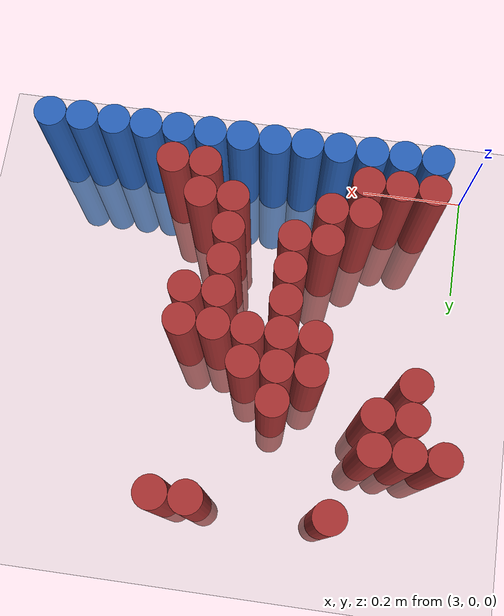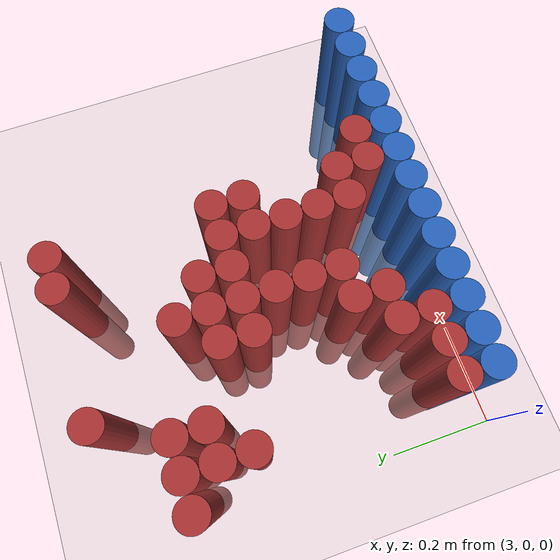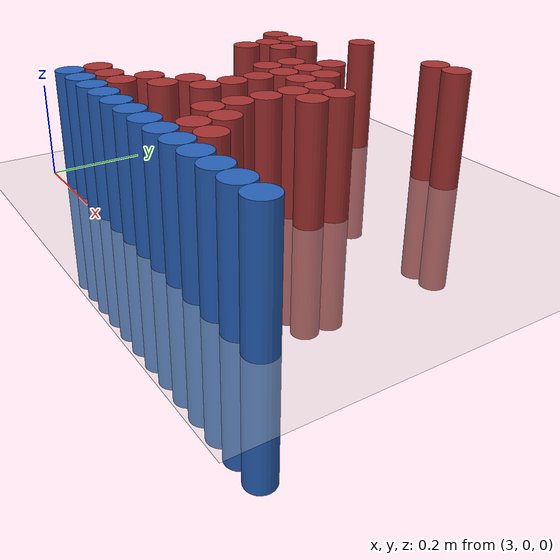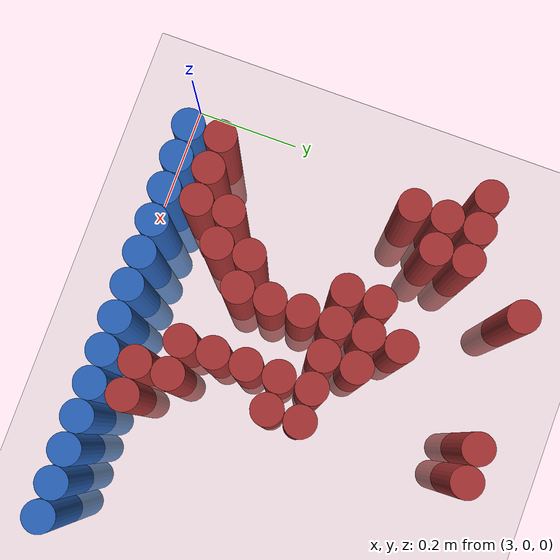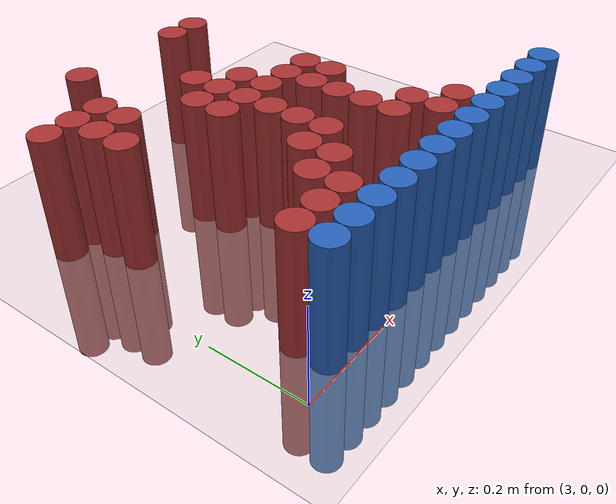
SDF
<sdf version="1.6">
 <world name="default">
  <model name="ground_plane">
   <static>1</static>
   <link name="link">
    <collision name="collision">
     <geometry><plane><normal>0 0 1</normal><size>100 100</size></plane></geometry>
     <surface><friction><ode><mu>100</mu><mu2>50</mu2></ode></friction></surface>
    </collision>
    <visual name="visual">
     <cast_shadows>0</cast_shadows>
     <geometry><plane><normal>0 0 1</normal><size>100 100</size></plane></geometry>
     <material>
      <script><uri>file://media/materials/scripts/gazebo.material</uri><name>Gazebo/Grey</name></script>
     </material>
    </visual>
   </link>
  </model>
  <model name="unit_cylinder_227">
   <static>1</static>
   <pose>3.210000 0.690000 0.000000 0.000000 0.000000 0.000000</pose>
   <link name="link">
    <inertial>
     <mass>1</mass>
     <inertia><ixx>0.145833</ixx><ixy>0</ixy><ixz>0</ixz><iyy>0.145833</iyy><iyz>0</iyz><izz>0.125</izz></inertia>
    </inertial>
    <collision name="collision">
     <geometry><cylinder><radius>0.030000</radius><length>0.5</length></cylinder></geometry>
    </collision>
    <visual name="visual">
     <geometry><cylinder><radius>0.030000</radius><length>0.5</length></cylinder></geometry>
     <material>
      <ambient>0.648000 0.192000 0.192000 1</ambient>
      <diffuse>0.648000 0.192000 0.192000 1</diffuse>
     </material>
     <material>
      <script><name>Gazebo/Grey</name><uri>file://media/materials/scripts/gazebo.material</uri></script>
     </material>
    </visual>
   </link>
  </model>
  <model name="unit_cylinder_228">
   <static>1</static>
   <pose>3.450000 0.690000 0.000000 0.000000 0.000000 0.000000</pose>
   <link name="link">
    <inertial>
     <mass>1</mass>
     <inertia><ixx>0.145833</ixx><ixy>0</ixy><ixz>0</ixz><iyy>0.145833</iyy><iyz>0</iyz><izz>0.125</izz></inertia>
    </inertial>
    <collision name="collision">
     <geometry><cylinder><radius>0.030000</radius><length>0.5</length></cylinder></geometry>
    </collision>
    <visual name="visual">
     <geometry><cylinder><radius>0.030000</radius><length>0.5</length></cylinder></geometry>
     <material>
      <ambient>0.648000 0.192000 0.192000 1</ambient>
      <diffuse>0.648000 0.192000 0.192000 1</diffuse>
     </material>
     <material>
      <script><name>Gazebo/Grey</name><uri>file://media/materials/scripts/gazebo.material</uri></script>
     </material>
    </visual>
   </link>
  </model>
  <model name="unit_cylinder_229">
   <static>1</static>
   <pose>3.510000 0.690000 0.000000 0.000000 0.000000 0.000000</pose>
   <link name="link">
    <inertial>
     <mass>1</mass>
     <inertia><ixx>0.145833</ixx><ixy>0</ixy><ixz>0</ixz><iyy>0.145833</iyy><iyz>0</iyz><izz>0.125</izz></inertia>
    </inertial>
    <collision name="collision">
     <geometry><cylinder><radius>0.030000</radius><length>0.5</length></cylinder></geometry>
    </collision>
    <visual name="visual">
     <geometry><cylinder><radius>0.030000</radius><length>0.5</length></cylinder></geometry>
     <material>
      <ambient>0.648000 0.192000 0.192000 1</ambient>
      <diffuse>0.648000 0.192000 0.192000 1</diffuse>
     </material>
     <material>
      <script><name>Gazebo/Grey</name><uri>file://media/materials/scripts/gazebo.material</uri></script>
     </material>
    </visual>
   </link>
  </model>
  <model name="unit_cylinder_237">
   <static>1</static>
   <pose>3.030000 0.570000 0.000000 0.000000 0.000000 0.000000</pose>
   <link name="link">
    <inertial>
     <mass>1</mass>
     <inertia><ixx>0.145833</ixx><ixy>0</ixy><ixz>0</ixz><iyy>0.145833</iyy><iyz>0</iyz><izz>0.125</izz></inertia>
    </inertial>
    <collision name="collision">
     <geometry><cylinder><radius>0.030000</radius><length>0.5</length></cylinder></geometry>
    </collision>
    <visual name="visual">
     <geometry><cylinder><radius>0.030000</radius><length>0.5</length></cylinder></geometry>
     <material>
      <ambient>0.648000 0.192000 0.192000 1</ambient>
      <diffuse>0.648000 0.192000 0.192000 1</diffuse>
     </material>
     <material>
      <script><name>Gazebo/Grey</name><uri>file://media/materials/scripts/gazebo.material</uri></script>
     </material>
    </visual>
   </link>
  </model>
  <model name="unit_cylinder_238">
   <static>1</static>
   <pose>3.090000 0.570000 0.000000 0.000000 0.000000 0.000000</pose>
   <link name="link">
    <inertial>
     <mass>1</mass>
     <inertia><ixx>0.145833</ixx><ixy>0</ixy><ixz>0</ixz><iyy>0.145833</iyy><iyz>0</iyz><izz>0.125</izz></inertia>
    </inertial>
    <collision name="collision">
     <geometry><cylinder><radius>0.030000</radius><length>0.5</length></cylinder></geometry>
    </collision>
    <visual name="visual">
     <geometry><cylinder><radius>0.030000</radius><length>0.5</length></cylinder></geometry>
     <material>
      <ambient>0.648000 0.192000 0.192000 1</ambient>
      <diffuse>0.648000 0.192000 0.192000 1</diffuse>
     </material>
     <material>
      <script><name>Gazebo/Grey</name><uri>file://media/materials/scripts/gazebo.material</uri></script>
     </material>
    </visual>
   </link>
  </model>
  <model name="unit_cylinder_239">
   <static>1</static>
   <pose>3.150000 0.570000 0.000000 0.000000 0.000000 0.000000</pose>
   <link name="link">
    <inertial>
     <mass>1</mass>
     <inertia><ixx>0.145833</ixx><ixy>0</ixy><ixz>0</ixz><iyy>0.145833</iyy><iyz>0</iyz><izz>0.125</izz></inertia>
    </inertial>
    <collision name="collision">
     <geometry><cylinder><radius>0.030000</radius><length>0.5</length></cylinder></geometry>
    </collision>
    <visual name="visual">
     <geometry><cylinder><radius>0.030000</radius><length>0.5</length></cylinder></geometry>
     <material>
      <ambient>0.648000 0.192000 0.192000 1</ambient>
      <diffuse>0.648000 0.192000 0.192000 1</diffuse>
     </material>
     <material>
      <script><name>Gazebo/Grey</name><uri>file://media/materials/scripts/gazebo.material</uri></script>
     </material>
    </visual>
   </link>
  </model>
  <model name="unit_cylinder_243">
   <static>1</static>
   <pose>3.090000 0.510000 0.000000 0.000000 0.000000 0.000000</pose>
   <link name="link">
    <inertial>
     <mass>1</mass>
     <inertia><ixx>0.145833</ixx><ixy>0</ixy><ixz>0</ixz><iyy>0.145833</iyy><iyz>0</iyz><izz>0.125</izz></inertia>
    </inertial>
    <collision name="collision">
     <geometry><cylinder><radius>0.030000</radius><length>0.5</length></cylinder></geometry>
    </collision>
    <visual name="visual">
     <geometry><cylinder><radius>0.030000</radius><length>0.5</length></cylinder></geometry>
     <material>
      <ambient>0.648000 0.192000 0.192000 1</ambient>
      <diffuse>0.648000 0.192000 0.192000 1</diffuse>
     </material>
     <material>
      <script><name>Gazebo/Grey</name><uri>file://media/materials/scripts/gazebo.material</uri></script>
     </material>
    </visual>
   </link>
  </model>
  <model name="unit_cylinder_244">
   <static>1</static>
   <pose>3.150000 0.510000 0.000000 0.000000 0.000000 0.000000</pose>
   <link name="link">
    <inertial>
     <mass>1</mass>
     <inertia><ixx>0.145833</ixx><ixy>0</ixy><ixz>0</ixz><iyy>0.145833</iyy><iyz>0</iyz><izz>0.125</izz></inertia>
    </inertial>
    <collision name="collision">
     <geometry><cylinder><radius>0.030000</radius><length>0.5</length></cylinder></geometry>
    </collision>
    <visual name="visual">
     <geometry><cylinder><radius>0.030000</radius><length>0.5</length></cylinder></geometry>
     <material>
      <ambient>0.648000 0.192000 0.192000 1</ambient>
      <diffuse>0.648000 0.192000 0.192000 1</diffuse>
     </material>
     <material>
      <script><name>Gazebo/Grey</name><uri>file://media/materials/scripts/gazebo.material</uri></script>
     </material>
    </visual>
   </link>
  </model>
  <model name="unit_cylinder_245">
   <static>1</static>
   <pose>3.330000 0.510000 0.000000 0.000000 0.000000 0.000000</pose>
   <link name="link">
    <inertial>
     <mass>1</mass>
     <inertia><ixx>0.145833</ixx><ixy>0</ixy><ixz>0</ixz><iyy>0.145833</iyy><iyz>0</iyz><izz>0.125</izz></inertia>
    </inertial>
    <collision name="collision">
     <geometry><cylinder><radius>0.030000</radius><length>0.5</length></cylinder></geometry>
    </collision>
    <visual name="visual">
     <geometry><cylinder><radius>0.030000</radius><length>0.5</length></cylinder></geometry>
     <material>
      <ambient>0.648000 0.192000 0.192000 1</ambient>
      <diffuse>0.648000 0.192000 0.192000 1</diffuse>
     </material>
     <material>
      <script><name>Gazebo/Grey</name><uri>file://media/materials/scripts/gazebo.material</uri></script>
     </material>
    </visual>
   </link>
  </model>
  <model name="unit_cylinder_253">
   <static>1</static>
   <pose>3.090000 0.450000 0.000000 0.000000 0.000000 0.000000</pose>
   <link name="link">
    <inertial>
     <mass>1</mass>
     <inertia><ixx>0.145833</ixx><ixy>0</ixy><ixz>0</ixz><iyy>0.145833</iyy><iyz>0</iyz><izz>0.125</izz></inertia>
    </inertial>
    <collision name="collision">
     <geometry><cylinder><radius>0.030000</radius><length>0.5</length></cylinder></geometry>
    </collision>
    <visual name="visual">
     <geometry><cylinder><radius>0.030000</radius><length>0.5</length></cylinder></geometry>
     <material>
      <ambient>0.648000 0.192000 0.192000 1</ambient>
      <diffuse>0.648000 0.192000 0.192000 1</diffuse>
     </material>
     <material>
      <script><name>Gazebo/Grey</name><uri>file://media/materials/scripts/gazebo.material</uri></script>
     </material>
    </visual>
   </link>
  </model>
  <model name="unit_cylinder_254">
   <static>1</static>
   <pose>3.270000 0.450000 0.000000 0.000000 0.000000 0.000000</pose>
   <link name="link">
    <inertial>
     <mass>1</mass>
     <inertia><ixx>0.145833</ixx><ixy>0</ixy><ixz>0</ixz><iyy>0.145833</iyy><iyz>0</iyz><izz>0.125</izz></inertia>
    </inertial>
    <collision name="collision">
     <geometry><cylinder><radius>0.030000</radius><length>0.5</length></cylinder></geometry>
    </collision>
    <visual name="visual">
     <geometry><cylinder><radius>0.030000</radius><length>0.5</length></cylinder></geometry>
     <material>
      <ambient>0.648000 0.192000 0.192000 1</ambient>
      <diffuse>0.648000 0.192000 0.192000 1</diffuse>
     </material>
     <material>
      <script><name>Gazebo/Grey</name><uri>file://media/materials/scripts/gazebo.material</uri></script>
     </material>
    </visual>
   </link>
  </model>
  <model name="unit_cylinder_255">
   <static>1</static>
   <pose>3.330000 0.450000 0.000000 0.000000 0.000000 0.000000</pose>
   <link name="link">
    <inertial>
     <mass>1</mass>
     <inertia><ixx>0.145833</ixx><ixy>0</ixy><ixz>0</ixz><iyy>0.145833</iyy><iyz>0</iyz><izz>0.125</izz></inertia>
    </inertial>
    <collision name="collision">
     <geometry><cylinder><radius>0.030000</radius><length>0.5</length></cylinder></geometry>
    </collision>
    <visual name="visual">
     <geometry><cylinder><radius>0.030000</radius><length>0.5</length></cylinder></geometry>
     <material>
      <ambient>0.648000 0.192000 0.192000 1</ambient>
      <diffuse>0.648000 0.192000 0.192000 1</diffuse>
     </material>
     <material>
      <script><name>Gazebo/Grey</name><uri>file://media/materials/scripts/gazebo.material</uri></script>
     </material>
    </visual>
   </link>
  </model>
  <model name="unit_cylinder_256">
   <static>1</static>
   <pose>3.390000 0.450000 0.000000 0.000000 0.000000 0.000000</pose>
   <link name="link">
    <inertial>
     <mass>1</mass>
     <inertia><ixx>0.145833</ixx><ixy>0</ixy><ixz>0</ixz><iyy>0.145833</iyy><iyz>0</iyz><izz>0.125</izz></inertia>
    </inertial>
    <collision name="collision">
     <geometry><cylinder><radius>0.030000</radius><length>0.5</length></cylinder></geometry>
    </collision>
    <visual name="visual">
     <geometry><cylinder><radius>0.030000</radius><length>0.5</length></cylinder></geometry>
     <material>
      <ambient>0.648000 0.192000 0.192000 1</ambient>
      <diffuse>0.648000 0.192000 0.192000 1</diffuse>
     </material>
     <material>
      <script><name>Gazebo/Grey</name><uri>file://media/materials/scripts/gazebo.material</uri></script>
     </material>
    </visual>
   </link>
  </model>
  <model name="unit_cylinder_264">
   <static>1</static>
   <pose>3.270000 0.390000 0.000000 0.000000 0.000000 0.000000</pose>
   <link name="link">
    <inertial>
     <mass>1</mass>
     <inertia><ixx>0.145833</ixx><ixy>0</ixy><ixz>0</ixz><iyy>0.145833</iyy><iyz>0</iyz><izz>0.125</izz></inertia>
    </inertial>
    <collision name="collision">
     <geometry><cylinder><radius>0.030000</radius><length>0.5</length></cylinder></geometry>
    </collision>
    <visual name="visual">
     <geometry><cylinder><radius>0.030000</radius><length>0.5</length></cylinder></geometry>
     <material>
      <ambient>0.648000 0.192000 0.192000 1</ambient>
      <diffuse>0.648000 0.192000 0.192000 1</diffuse>
     </material>
     <material>
      <script><name>Gazebo/Grey</name><uri>file://media/materials/scripts/gazebo.material</uri></script>
     </material>
    </visual>
   </link>
  </model>
  <model name="unit_cylinder_265">
   <static>1</static>
   <pose>3.330000 0.390000 0.000000 0.000000 0.000000 0.000000</pose>
   <link name="link">
    <inertial>
     <mass>1</mass>
     <inertia><ixx>0.145833</ixx><ixy>0</ixy><ixz>0</ixz><iyy>0.145833</iyy><iyz>0</iyz><izz>0.125</izz></inertia>
    </inertial>
    <collision name="collision">
     <geometry><cylinder><radius>0.030000</radius><length>0.5</length></cylinder></geometry>
    </collision>
    <visual name="visual">
     <geometry><cylinder><radius>0.030000</radius><length>0.5</length></cylinder></geometry>
     <material>
      <ambient>0.648000 0.192000 0.192000 1</ambient>
      <diffuse>0.648000 0.192000 0.192000 1</diffuse>
     </material>
     <material>
      <script><name>Gazebo/Grey</name><uri>file://media/materials/scripts/gazebo.material</uri></script>
     </material>
    </visual>
   </link>
  </model>
  <model name="unit_cylinder_266">
   <static>1</static>
   <pose>3.390000 0.390000 0.000000 0.000000 0.000000 0.000000</pose>
   <link name="link">
    <inertial>
     <mass>1</mass>
     <inertia><ixx>0.145833</ixx><ixy>0</ixy><ixz>0</ixz><iyy>0.145833</iyy><iyz>0</iyz><izz>0.125</izz></inertia>
    </inertial>
    <collision name="collision">
     <geometry><cylinder><radius>0.030000</radius><length>0.5</length></cylinder></geometry>
    </collision>
    <visual name="visual">
     <geometry><cylinder><radius>0.030000</radius><length>0.5</length></cylinder></geometry>
     <material>
      <ambient>0.648000 0.192000 0.192000 1</ambient>
      <diffuse>0.648000 0.192000 0.192000 1</diffuse>
     </material>
     <material>
      <script><name>Gazebo/Grey</name><uri>file://media/materials/scripts/gazebo.material</uri></script>
     </material>
    </visual>
   </link>
  </model>
  <model name="unit_cylinder_267">
   <static>1</static>
   <pose>3.450000 0.390000 0.000000 0.000000 0.000000 0.000000</pose>
   <link name="link">
    <inertial>
     <mass>1</mass>
     <inertia><ixx>0.145833</ixx><ixy>0</ixy><ixz>0</ixz><iyy>0.145833</iyy><iyz>0</iyz><izz>0.125</izz></inertia>
    </inertial>
    <collision name="collision">
     <geometry><cylinder><radius>0.030000</radius><length>0.5</length></cylinder></geometry>
    </collision>
    <visual name="visual">
     <geometry><cylinder><radius>0.030000</radius><length>0.5</length></cylinder></geometry>
     <material>
      <ambient>0.648000 0.192000 0.192000 1</ambient>
      <diffuse>0.648000 0.192000 0.192000 1</diffuse>
     </material>
     <material>
      <script><name>Gazebo/Grey</name><uri>file://media/materials/scripts/gazebo.material</uri></script>
     </material>
    </visual>
   </link>
  </model>
  <model name="unit_cylinder_268">
   <static>1</static>
   <pose>3.510000 0.390000 0.000000 0.000000 0.000000 0.000000</pose>
   <link name="link">
    <inertial>
     <mass>1</mass>
     <inertia><ixx>0.145833</ixx><ixy>0</ixy><ixz>0</ixz><iyy>0.145833</iyy><iyz>0</iyz><izz>0.125</izz></inertia>
    </inertial>
    <collision name="collision">
     <geometry><cylinder><radius>0.030000</radius><length>0.5</length></cylinder></geometry>
    </collision>
    <visual name="visual">
     <geometry><cylinder><radius>0.030000</radius><length>0.5</length></cylinder></geometry>
     <material>
      <ambient>0.648000 0.192000 0.192000 1</ambient>
      <diffuse>0.648000 0.192000 0.192000 1</diffuse>
     </material>
     <material>
      <script><name>Gazebo/Grey</name><uri>file://media/materials/scripts/gazebo.material</uri></script>
     </material>
    </visual>
   </link>
  </model>
  <model name="unit_cylinder_276">
   <static>1</static>
   <pose>3.330000 0.330000 0.000000 0.000000 0.000000 0.000000</pose>
   <link name="link">
    <inertial>
     <mass>1</mass>
     <inertia><ixx>0.145833</ixx><ixy>0</ixy><ixz>0</ixz><iyy>0.145833</iyy><iyz>0</iyz><izz>0.125</izz></inertia>
    </inertial>
    <collision name="collision">
     <geometry><cylinder><radius>0.030000</radius><length>0.5</length></cylinder></geometry>
    </collision>
    <visual name="visual">
     <geometry><cylinder><radius>0.030000</radius><length>0.5</length></cylinder></geometry>
     <material>
      <ambient>0.648000 0.192000 0.192000 1</ambient>
      <diffuse>0.648000 0.192000 0.192000 1</diffuse>
     </material>
     <material>
      <script><name>Gazebo/Grey</name><uri>file://media/materials/scripts/gazebo.material</uri></script>
     </material>
    </visual>
   </link>
  </model>
  <model name="unit_cylinder_277">
   <static>1</static>
   <pose>3.450000 0.330000 0.000000 0.000000 0.000000 0.000000</pose>
   <link name="link">
    <inertial>
     <mass>1</mass>
     <inertia><ixx>0.145833</ixx><ixy>0</ixy><ixz>0</ixz><iyy>0.145833</iyy><iyz>0</iyz><izz>0.125</izz></inertia>
    </inertial>
    <collision name="collision">
     <geometry><cylinder><radius>0.030000</radius><length>0.5</length></cylinder></geometry>
    </collision>
    <visual name="visual">
     <geometry><cylinder><radius>0.030000</radius><length>0.5</length></cylinder></geometry>
     <material>
      <ambient>0.648000 0.192000 0.192000 1</ambient>
      <diffuse>0.648000 0.192000 0.192000 1</diffuse>
     </material>
     <material>
      <script><name>Gazebo/Grey</name><uri>file://media/materials/scripts/gazebo.material</uri></script>
     </material>
    </visual>
   </link>
  </model>
  <model name="unit_cylinder_278">
   <static>1</static>
   <pose>3.510000 0.330000 0.000000 0.000000 0.000000 0.000000</pose>
   <link name="link">
    <inertial>
     <mass>1</mass>
     <inertia><ixx>0.145833</ixx><ixy>0</ixy><ixz>0</ixz><iyy>0.145833</iyy><iyz>0</iyz><izz>0.125</izz></inertia>
    </inertial>
    <collision name="collision">
     <geometry><cylinder><radius>0.030000</radius><length>0.5</length></cylinder></geometry>
    </collision>
    <visual name="visual">
     <geometry><cylinder><radius>0.030000</radius><length>0.5</length></cylinder></geometry>
     <material>
      <ambient>0.648000 0.192000 0.192000 1</ambient>
      <diffuse>0.648000 0.192000 0.192000 1</diffuse>
     </material>
     <material>
      <script><name>Gazebo/Grey</name><uri>file://media/materials/scripts/gazebo.material</uri></script>
     </material>
    </visual>
   </link>
  </model>
  <model name="unit_cylinder_285">
   <static>1</static>
   <pose>3.330000 0.270000 0.000000 0.000000 0.000000 0.000000</pose>
   <link name="link">
    <inertial>
     <mass>1</mass>
     <inertia><ixx>0.145833</ixx><ixy>0</ixy><ixz>0</ixz><iyy>0.145833</iyy><iyz>0</iyz><izz>0.125</izz></inertia>
    </inertial>
    <collision name="collision">
     <geometry><cylinder><radius>0.030000</radius><length>0.5</length></cylinder></geometry>
    </collision>
    <visual name="visual">
     <geometry><cylinder><radius>0.030000</radius><length>0.5</length></cylinder></geometry>
     <material>
      <ambient>0.648000 0.192000 0.192000 1</ambient>
      <diffuse>0.648000 0.192000 0.192000 1</diffuse>
     </material>
     <material>
      <script><name>Gazebo/Grey</name><uri>file://media/materials/scripts/gazebo.material</uri></script>
     </material>
    </visual>
   </link>
  </model>
  <model name="unit_cylinder_286">
   <static>1</static>
   <pose>3.450000 0.270000 0.000000 0.000000 0.000000 0.000000</pose>
   <link name="link">
    <inertial>
     <mass>1</mass>
     <inertia><ixx>0.145833</ixx><ixy>0</ixy><ixz>0</ixz><iyy>0.145833</iyy><iyz>0</iyz><izz>0.125</izz></inertia>
    </inertial>
    <collision name="collision">
     <geometry><cylinder><radius>0.030000</radius><length>0.5</length></cylinder></geometry>
    </collision>
    <visual name="visual">
     <geometry><cylinder><radius>0.030000</radius><length>0.5</length></cylinder></geometry>
     <material>
      <ambient>0.648000 0.192000 0.192000 1</ambient>
      <diffuse>0.648000 0.192000 0.192000 1</diffuse>
     </material>
     <material>
      <script><name>Gazebo/Grey</name><uri>file://media/materials/scripts/gazebo.material</uri></script>
     </material>
    </visual>
   </link>
  </model>
  <model name="unit_cylinder_290">
   <static>1</static>
   <pose>3.270000 0.210000 0.000000 0.000000 0.000000 0.000000</pose>
   <link name="link">
    <inertial>
     <mass>1</mass>
     <inertia><ixx>0.145833</ixx><ixy>0</ixy><ixz>0</ixz><iyy>0.145833</iyy><iyz>0</iyz><izz>0.125</izz></inertia>
    </inertial>
    <collision name="collision">
     <geometry><cylinder><radius>0.030000</radius><length>0.5</length></cylinder></geometry>
    </collision>
    <visual name="visual">
     <geometry><cylinder><radius>0.030000</radius><length>0.5</length></cylinder></geometry>
     <material>
      <ambient>0.648000 0.192000 0.192000 1</ambient>
      <diffuse>0.648000 0.192000 0.192000 1</diffuse>
     </material>
     <material>
      <script><name>Gazebo/Grey</name><uri>file://media/materials/scripts/gazebo.material</uri></script>
     </material>
    </visual>
   </link>
  </model>
  <model name="unit_cylinder_291">
   <static>1</static>
   <pose>3.330000 0.210000 0.000000 0.000000 0.000000 0.000000</pose>
   <link name="link">
    <inertial>
     <mass>1</mass>
     <inertia><ixx>0.145833</ixx><ixy>0</ixy><ixz>0</ixz><iyy>0.145833</iyy><iyz>0</iyz><izz>0.125</izz></inertia>
    </inertial>
    <collision name="collision">
     <geometry><cylinder><radius>0.030000</radius><length>0.5</length></cylinder></geometry>
    </collision>
    <visual name="visual">
     <geometry><cylinder><radius>0.030000</radius><length>0.5</length></cylinder></geometry>
     <material>
      <ambient>0.648000 0.192000 0.192000 1</ambient>
      <diffuse>0.648000 0.192000 0.192000 1</diffuse>
     </material>
     <material>
      <script><name>Gazebo/Grey</name><uri>file://media/materials/scripts/gazebo.material</uri></script>
     </material>
    </visual>
   </link>
  </model>
  <model name="unit_cylinder_292">
   <static>1</static>
   <pose>3.450000 0.210000 0.000000 0.000000 0.000000 0.000000</pose>
   <link name="link">
    <inertial>
     <mass>1</mass>
     <inertia><ixx>0.145833</ixx><ixy>0</ixy><ixz>0</ixz><iyy>0.145833</iyy><iyz>0</iyz><izz>0.125</izz></inertia>
    </inertial>
    <collision name="collision">
     <geometry><cylinder><radius>0.030000</radius><length>0.5</length></cylinder></geometry>
    </collision>
    <visual name="visual">
     <geometry><cylinder><radius>0.030000</radius><length>0.5</length></cylinder></geometry>
     <material>
      <ambient>0.648000 0.192000 0.192000 1</ambient>
      <diffuse>0.648000 0.192000 0.192000 1</diffuse>
     </material>
     <material>
      <script><name>Gazebo/Grey</name><uri>file://media/materials/scripts/gazebo.material</uri></script>
     </material>
    </visual>
   </link>
  </model>
  <model name="unit_cylinder_293">
   <static>1</static>
   <pose>3.210000 0.150000 0.000000 0.000000 0.000000 0.000000</pose>
   <link name="link">
    <inertial>
     <mass>1</mass>
     <inertia><ixx>0.145833</ixx><ixy>0</ixy><ixz>0</ixz><iyy>0.145833</iyy><iyz>0</iyz><izz>0.125</izz></inertia>
    </inertial>
    <collision name="collision">
     <geometry><cylinder><radius>0.030000</radius><length>0.5</length></cylinder></geometry>
    </collision>
    <visual name="visual">
     <geometry><cylinder><radius>0.030000</radius><length>0.5</length></cylinder></geometry>
     <material>
      <ambient>0.648000 0.192000 0.192000 1</ambient>
      <diffuse>0.648000 0.192000 0.192000 1</diffuse>
     </material>
     <material>
      <script><name>Gazebo/Grey</name><uri>file://media/materials/scripts/gazebo.material</uri></script>
     </material>
    </visual>
   </link>
  </model>
  <model name="unit_cylinder_294">
   <static>1</static>
   <pose>3.270000 0.150000 0.000000 0.000000 0.000000 0.000000</pose>
   <link name="link">
    <inertial>
     <mass>1</mass>
     <inertia><ixx>0.145833</ixx><ixy>0</ixy><ixz>0</ixz><iyy>0.145833</iyy><iyz>0</iyz><izz>0.125</izz></inertia>
    </inertial>
    <collision name="collision">
     <geometry><cylinder><radius>0.030000</radius><length>0.5</length></cylinder></geometry>
    </collision>
    <visual name="visual">
     <geometry><cylinder><radius>0.030000</radius><length>0.5</length></cylinder></geometry>
     <material>
      <ambient>0.648000 0.192000 0.192000 1</ambient>
      <diffuse>0.648000 0.192000 0.192000 1</diffuse>
     </material>
     <material>
      <script><name>Gazebo/Grey</name><uri>file://media/materials/scripts/gazebo.material</uri></script>
     </material>
    </visual>
   </link>
  </model>
  <model name="unit_cylinder_295">
   <static>1</static>
   <pose>3.450000 0.150000 0.000000 0.000000 0.000000 0.000000</pose>
   <link name="link">
    <inertial>
     <mass>1</mass>
     <inertia><ixx>0.145833</ixx><ixy>0</ixy><ixz>0</ixz><iyy>0.145833</iyy><iyz>0</iyz><izz>0.125</izz></inertia>
    </inertial>
    <collision name="collision">
     <geometry><cylinder><radius>0.030000</radius><length>0.5</length></cylinder></geometry>
    </collision>
    <visual name="visual">
     <geometry><cylinder><radius>0.030000</radius><length>0.5</length></cylinder></geometry>
     <material>
      <ambient>0.648000 0.192000 0.192000 1</ambient>
      <diffuse>0.648000 0.192000 0.192000 1</diffuse>
     </material>
     <material>
      <script><name>Gazebo/Grey</name><uri>file://media/materials/scripts/gazebo.material</uri></script>
     </material>
    </visual>
   </link>
  </model>
  <model name="unit_cylinder_296">
   <static>1</static>
   <pose>3.510000 0.150000 0.000000 0.000000 0.000000 0.000000</pose>
   <link name="link">
    <inertial>
     <mass>1</mass>
     <inertia><ixx>0.145833</ixx><ixy>0</ixy><ixz>0</ixz><iyy>0.145833</iyy><iyz>0</iyz><izz>0.125</izz></inertia>
    </inertial>
    <collision name="collision">
     <geometry><cylinder><radius>0.030000</radius><length>0.5</length></cylinder></geometry>
    </collision>
    <visual name="visual">
     <geometry><cylinder><radius>0.030000</radius><length>0.5</length></cylinder></geometry>
     <material>
      <ambient>0.648000 0.192000 0.192000 1</ambient>
      <diffuse>0.648000 0.192000 0.192000 1</diffuse>
     </material>
     <material>
      <script><name>Gazebo/Grey</name><uri>file://media/materials/scripts/gazebo.material</uri></script>
     </material>
    </visual>
   </link>
  </model>
  <model name="unit_cylinder_302">
   <static>1</static>
   <pose>3.090000 0.090000 0.000000 0.000000 0.000000 0.000000</pose>
   <link name="link">
    <inertial>
     <mass>1</mass>
     <inertia><ixx>0.145833</ixx><ixy>0</ixy><ixz>0</ixz><iyy>0.145833</iyy><iyz>0</iyz><izz>0.125</izz></inertia>
    </inertial>
    <collision name="collision">
     <geometry><cylinder><radius>0.030000</radius><length>0.5</length></cylinder></geometry>
    </collision>
    <visual name="visual">
     <geometry><cylinder><radius>0.030000</radius><length>0.5</length></cylinder></geometry>
     <material>
      <ambient>0.648000 0.192000 0.192000 1</ambient>
      <diffuse>0.648000 0.192000 0.192000 1</diffuse>
     </material>
     <material>
      <script><name>Gazebo/Grey</name><uri>file://media/materials/scripts/gazebo.material</uri></script>
     </material>
    </visual>
   </link>
  </model>
  <model name="unit_cylinder_303">
   <static>1</static>
   <pose>3.150000 0.090000 0.000000 0.000000 0.000000 0.000000</pose>
   <link name="link">
    <inertial>
     <mass>1</mass>
     <inertia><ixx>0.145833</ixx><ixy>0</ixy><ixz>0</ixz><iyy>0.145833</iyy><iyz>0</iyz><izz>0.125</izz></inertia>
    </inertial>
    <collision name="collision">
     <geometry><cylinder><radius>0.030000</radius><length>0.5</length></cylinder></geometry>
    </collision>
    <visual name="visual">
     <geometry><cylinder><radius>0.030000</radius><length>0.5</length></cylinder></geometry>
     <material>
      <ambient>0.648000 0.192000 0.192000 1</ambient>
      <diffuse>0.648000 0.192000 0.192000 1</diffuse>
     </material>
     <material>
      <script><name>Gazebo/Grey</name><uri>file://media/materials/scripts/gazebo.material</uri></script>
     </material>
    </visual>
   </link>
  </model>
  <model name="unit_cylinder_304">
   <static>1</static>
   <pose>3.210000 0.090000 0.000000 0.000000 0.000000 0.000000</pose>
   <link name="link">
    <inertial>
     <mass>1</mass>
     <inertia><ixx>0.145833</ixx><ixy>0</ixy><ixz>0</ixz><iyy>0.145833</iyy><iyz>0</iyz><izz>0.125</izz></inertia>
    </inertial>
    <collision name="collision">
     <geometry><cylinder><radius>0.030000</radius><length>0.5</length></cylinder></geometry>
    </collision>
    <visual name="visual">
     <geometry><cylinder><radius>0.030000</radius><length>0.5</length></cylinder></geometry>
     <material>
      <ambient>0.648000 0.192000 0.192000 1</ambient>
      <diffuse>0.648000 0.192000 0.192000 1</diffuse>
     </material>
     <material>
      <script><name>Gazebo/Grey</name><uri>file://media/materials/scripts/gazebo.material</uri></script>
     </material>
    </visual>
   </link>
  </model>
  <model name="unit_cylinder_305">
   <static>1</static>
   <pose>3.510000 0.090000 0.000000 0.000000 0.000000 0.000000</pose>
   <link name="link">
    <inertial>
     <mass>1</mass>
     <inertia><ixx>0.145833</ixx><ixy>0</ixy><ixz>0</ixz><iyy>0.145833</iyy><iyz>0</iyz><izz>0.125</izz></inertia>
    </inertial>
    <collision name="collision">
     <geometry><cylinder><radius>0.030000</radius><length>0.5</length></cylinder></geometry>
    </collision>
    <visual name="visual">
     <geometry><cylinder><radius>0.030000</radius><length>0.5</length></cylinder></geometry>
     <material>
      <ambient>0.648000 0.192000 0.192000 1</ambient>
      <diffuse>0.648000 0.192000 0.192000 1</diffuse>
     </material>
     <material>
      <script><name>Gazebo/Grey</name><uri>file://media/materials/scripts/gazebo.material</uri></script>
     </material>
    </visual>
   </link>
  </model>
  <model name="unit_cylinder_306">
   <static>1</static>
   <pose>3.570000 0.090000 0.000000 0.000000 0.000000 0.000000</pose>
   <link name="link">
    <inertial>
     <mass>1</mass>
     <inertia><ixx>0.145833</ixx><ixy>0</ixy><ixz>0</ixz><iyy>0.145833</iyy><iyz>0</iyz><izz>0.125</izz></inertia>
    </inertial>
    <collision name="collision">
     <geometry><cylinder><radius>0.030000</radius><length>0.5</length></cylinder></geometry>
    </collision>
    <visual name="visual">
     <geometry><cylinder><radius>0.030000</radius><length>0.5</length></cylinder></geometry>
     <material>
      <ambient>0.648000 0.192000 0.192000 1</ambient>
      <diffuse>0.648000 0.192000 0.192000 1</diffuse>
     </material>
     <material>
      <script><name>Gazebo/Grey</name><uri>file://media/materials/scripts/gazebo.material</uri></script>
     </material>
    </visual>
   </link>
  </model>
  <model name="unit_cylinder_324">
   <static>1</static>
   <pose>3.090000 0.030000 0.000000 0.000000 0.000000 0.000000</pose>
   <link name="link">
    <inertial>
     <mass>1</mass>
     <inertia><ixx>0.145833</ixx><ixy>0</ixy><ixz>0</ixz><iyy>0.145833</iyy><iyz>0</iyz><izz>0.125</izz></inertia>
    </inertial>
    <collision name="collision">
     <geometry><cylinder><radius>0.030000</radius><length>0.5</length></cylinder></geometry>
    </collision>
    <visual name="visual">
     <geometry><cylinder><radius>0.030000</radius><length>0.5</length></cylinder></geometry>
     <material>
      <ambient>0.152000 0.379000 0.720000 1</ambient>
      <diffuse>0.152000 0.379000 0.720000 1</diffuse>
     </material>
     <material>
      <script><name>Gazebo/Grey</name><uri>file://media/materials/scripts/gazebo.material</uri></script>
     </material>
    </visual>
   </link>
  </model>
  <model name="unit_cylinder_325">
   <static>1</static>
   <pose>3.150000 0.030000 0.000000 0.000000 0.000000 0.000000</pose>
   <link name="link">
    <inertial>
     <mass>1</mass>
     <inertia><ixx>0.145833</ixx><ixy>0</ixy><ixz>0</ixz><iyy>0.145833</iyy><iyz>0</iyz><izz>0.125</izz></inertia>
    </inertial>
    <collision name="collision">
     <geometry><cylinder><radius>0.030000</radius><length>0.5</length></cylinder></geometry>
    </collision>
    <visual name="visual">
     <geometry><cylinder><radius>0.030000</radius><length>0.5</length></cylinder></geometry>
     <material>
      <ambient>0.152000 0.379000 0.720000 1</ambient>
      <diffuse>0.152000 0.379000 0.720000 1</diffuse>
     </material>
     <material>
      <script><name>Gazebo/Grey</name><uri>file://media/materials/scripts/gazebo.material</uri></script>
     </material>
    </visual>
   </link>
  </model>
  <model name="unit_cylinder_326">
   <static>1</static>
   <pose>3.210000 0.030000 0.000000 0.000000 0.000000 0.000000</pose>
   <link name="link">
    <inertial>
     <mass>1</mass>
     <inertia><ixx>0.145833</ixx><ixy>0</ixy><ixz>0</ixz><iyy>0.145833</iyy><iyz>0</iyz><izz>0.125</izz></inertia>
    </inertial>
    <collision name="collision">
     <geometry><cylinder><radius>0.030000</radius><length>0.5</length></cylinder></geometry>
    </collision>
    <visual name="visual">
     <geometry><cylinder><radius>0.030000</radius><length>0.5</length></cylinder></geometry>
     <material>
      <ambient>0.152000 0.379000 0.720000 1</ambient>
      <diffuse>0.152000 0.379000 0.720000 1</diffuse>
     </material>
     <material>
      <script><name>Gazebo/Grey</name><uri>file://media/materials/scripts/gazebo.material</uri></script>
     </material>
    </visual>
   </link>
  </model>
  <model name="unit_cylinder_327">
   <static>1</static>
   <pose>3.270000 0.030000 0.000000 0.000000 0.000000 0.000000</pose>
   <link name="link">
    <inertial>
     <mass>1</mass>
     <inertia><ixx>0.145833</ixx><ixy>0</ixy><ixz>0</ixz><iyy>0.145833</iyy><iyz>0</iyz><izz>0.125</izz></inertia>
    </inertial>
    <collision name="collision">
     <geometry><cylinder><radius>0.030000</radius><length>0.5</length></cylinder></geometry>
    </collision>
    <visual name="visual">
     <geometry><cylinder><radius>0.030000</radius><length>0.5</length></cylinder></geometry>
     <material>
      <ambient>0.152000 0.379000 0.720000 1</ambient>
      <diffuse>0.152000 0.379000 0.720000 1</diffuse>
     </material>
     <material>
      <script><name>Gazebo/Grey</name><uri>file://media/materials/scripts/gazebo.material</uri></script>
     </material>
    </visual>
   </link>
  </model>
  <model name="unit_cylinder_328">
   <static>1</static>
   <pose>3.330000 0.030000 0.000000 0.000000 0.000000 0.000000</pose>
   <link name="link">
    <inertial>
     <mass>1</mass>
     <inertia><ixx>0.145833</ixx><ixy>0</ixy><ixz>0</ixz><iyy>0.145833</iyy><iyz>0</iyz><izz>0.125</izz></inertia>
    </inertial>
    <collision name="collision">
     <geometry><cylinder><radius>0.030000</radius><length>0.5</length></cylinder></geometry>
    </collision>
    <visual name="visual">
     <geometry><cylinder><radius>0.030000</radius><length>0.5</length></cylinder></geometry>
     <material>
      <ambient>0.152000 0.379000 0.720000 1</ambient>
      <diffuse>0.152000 0.379000 0.720000 1</diffuse>
     </material>
     <material>
      <script><name>Gazebo/Grey</name><uri>file://media/materials/scripts/gazebo.material</uri></script>
     </material>
    </visual>
   </link>
  </model>
  <model name="unit_cylinder_329">
   <static>1</static>
   <pose>3.390000 0.030000 0.000000 0.000000 0.000000 0.000000</pose>
   <link name="link">
    <inertial>
     <mass>1</mass>
     <inertia><ixx>0.145833</ixx><ixy>0</ixy><ixz>0</ixz><iyy>0.145833</iyy><iyz>0</iyz><izz>0.125</izz></inertia>
    </inertial>
    <collision name="collision">
     <geometry><cylinder><radius>0.030000</radius><length>0.5</length></cylinder></geometry>
    </collision>
    <visual name="visual">
     <geometry><cylinder><radius>0.030000</radius><length>0.5</length></cylinder></geometry>
     <material>
      <ambient>0.152000 0.379000 0.720000 1</ambient>
      <diffuse>0.152000 0.379000 0.720000 1</diffuse>
     </material>
     <material>
      <script><name>Gazebo/Grey</name><uri>file://media/materials/scripts/gazebo.material</uri></script>
     </material>
    </visual>
   </link>
  </model>
  <model name="unit_cylinder_330">
   <static>1</static>
   <pose>3.450000 0.030000 0.000000 0.000000 0.000000 0.000000</pose>
   <link name="link">
    <inertial>
     <mass>1</mass>
     <inertia><ixx>0.145833</ixx><ixy>0</ixy><ixz>0</ixz><iyy>0.145833</iyy><iyz>0</iyz><izz>0.125</izz></inertia>
    </inertial>
    <collision name="collision">
     <geometry><cylinder><radius>0.030000</radius><length>0.5</length></cylinder></geometry>
    </collision>
    <visual name="visual">
     <geometry><cylinder><radius>0.030000</radius><length>0.5</length></cylinder></geometry>
     <material>
      <ambient>0.152000 0.379000 0.720000 1</ambient>
      <diffuse>0.152000 0.379000 0.720000 1</diffuse>
     </material>
     <material>
      <script><name>Gazebo/Grey</name><uri>file://media/materials/scripts/gazebo.material</uri></script>
     </material>
    </visual>
   </link>
  </model>
  <model name="unit_cylinder_331">
   <static>1</static>
   <pose>3.510000 0.030000 0.000000 0.000000 0.000000 0.000000</pose>
   <link name="link">
    <inertial>
     <mass>1</mass>
     <inertia><ixx>0.145833</ixx><ixy>0</ixy><ixz>0</ixz><iyy>0.145833</iyy><iyz>0</iyz><izz>0.125</izz></inertia>
    </inertial>
    <collision name="collision">
     <geometry><cylinder><radius>0.030000</radius><length>0.5</length></cylinder></geometry>
    </collision>
    <visual name="visual">
     <geometry><cylinder><radius>0.030000</radius><length>0.5</length></cylinder></geometry>
     <material>
      <ambient>0.152000 0.379000 0.720000 1</ambient>
      <diffuse>0.152000 0.379000 0.720000 1</diffuse>
     </material>
     <material>
      <script><name>Gazebo/Grey</name><uri>file://media/materials/scripts/gazebo.material</uri></script>
     </material>
    </visual>
   </link>
  </model>
  <model name="unit_cylinder_332">
   <static>1</static>
   <pose>3.570000 0.030000 0.000000 0.000000 0.000000 0.000000</pose>
   <link name="link">
    <inertial>
     <mass>1</mass>
     <inertia><ixx>0.145833</ixx><ixy>0</ixy><ixz>0</ixz><iyy>0.145833</iyy><iyz>0</iyz><izz>0.125</izz></inertia>
    </inertial>
    <collision name="collision">
     <geometry><cylinder><radius>0.030000</radius><length>0.5</length></cylinder></geometry>
    </collision>
    <visual name="visual">
     <geometry><cylinder><radius>0.030000</radius><length>0.5</length></cylinder></geometry>
     <material>
      <ambient>0.152000 0.379000 0.720000 1</ambient>
      <diffuse>0.152000 0.379000 0.720000 1</diffuse>
     </material>
     <material>
      <script><name>Gazebo/Grey</name><uri>file://media/materials/scripts/gazebo.material</uri></script>
     </material>
    </visual>
   </link>
  </model>
  <model name="unit_cylinder_333">
   <static>1</static>
   <pose>3.630000 0.030000 0.000000 0.000000 0.000000 0.000000</pose>
   <link name="link">
    <inertial>
     <mass>1</mass>
     <inertia><ixx>0.145833</ixx><ixy>0</ixy><ixz>0</ixz><iyy>0.145833</iyy><iyz>0</iyz><izz>0.125</izz></inertia>
    </inertial>
    <collision name="collision">
     <geometry><cylinder><radius>0.030000</radius><length>0.5</length></cylinder></geometry>
    </collision>
    <visual name="visual">
     <geometry><cylinder><radius>0.030000</radius><length>0.5</length></cylinder></geometry>
     <material>
      <ambient>0.152000 0.379000 0.720000 1</ambient>
      <diffuse>0.152000 0.379000 0.720000 1</diffuse>
     </material>
     <material>
      <script><name>Gazebo/Grey</name><uri>file://media/materials/scripts/gazebo.material</uri></script>
     </material>
    </visual>
   </link>
  </model>
  <model name="unit_cylinder_334">
   <static>1</static>
   <pose>3.690000 0.030000 0.000000 0.000000 0.000000 0.000000</pose>
   <link name="link">
    <inertial>
     <mass>1</mass>
     <inertia><ixx>0.145833</ixx><ixy>0</ixy><ixz>0</ixz><iyy>0.145833</iyy><iyz>0</iyz><izz>0.125</izz></inertia>
    </inertial>
    <collision name="collision">
     <geometry><cylinder><radius>0.030000</radius><length>0.5</length></cylinder></geometry>
    </collision>
    <visual name="visual">
     <geometry><cylinder><radius>0.030000</radius><length>0.5</length></cylinder></geometry>
     <material>
      <ambient>0.152000 0.379000 0.720000 1</ambient>
      <diffuse>0.152000 0.379000 0.720000 1</diffuse>
     </material>
     <material>
      <script><name>Gazebo/Grey</name><uri>file://media/materials/scripts/gazebo.material</uri></script>
     </material>
    </visual>
   </link>
  </model>
  <model name="unit_cylinder_335">
   <static>1</static>
   <pose>3.750000 0.030000 0.000000 0.000000 0.000000 0.000000</pose>
   <link name="link">
    <inertial>
     <mass>1</mass>
     <inertia><ixx>0.145833</ixx><ixy>0</ixy><ixz>0</ixz><iyy>0.145833</iyy><iyz>0</iyz><izz>0.125</izz></inertia>
    </inertial>
    <collision name="collision">
     <geometry><cylinder><radius>0.030000</radius><length>0.5</length></cylinder></geometry>
    </collision>
    <visual name="visual">
     <geometry><cylinder><radius>0.030000</radius><length>0.5</length></cylinder></geometry>
     <material>
      <ambient>0.152000 0.379000 0.720000 1</ambient>
      <diffuse>0.152000 0.379000 0.720000 1</diffuse>
     </material>
     <material>
      <script><name>Gazebo/Grey</name><uri>file://media/materials/scripts/gazebo.material</uri></script>
     </material>
    </visual>
   </link>
  </model>
  <model name="unit_cylinder_336">
   <static>1</static>
   <pose>3.810000 0.030000 0.000000 0.000000 0.000000 0.000000</pose>
   <link name="link">
    <inertial>
     <mass>1</mass>
     <inertia><ixx>0.145833</ixx><ixy>0</ixy><ixz>0</ixz><iyy>0.145833</iyy><iyz>0</iyz><izz>0.125</izz></inertia>
    </inertial>
    <collision name="collision">
     <geometry><cylinder><radius>0.030000</radius><length>0.5</length></cylinder></geometry>
    </collision>
    <visual name="visual">
     <geometry><cylinder><radius>0.030000</radius><length>0.5</length></cylinder></geometry>
     <material>
      <ambient>0.152000 0.379000 0.720000 1</ambient>
      <diffuse>0.152000 0.379000 0.720000 1</diffuse>
     </material>
     <material>
      <script><name>Gazebo/Grey</name><uri>file://media/materials/scripts/gazebo.material</uri></script>
     </material>
    </visual>
   </link>
  </model>
 </world>
</sdf>
